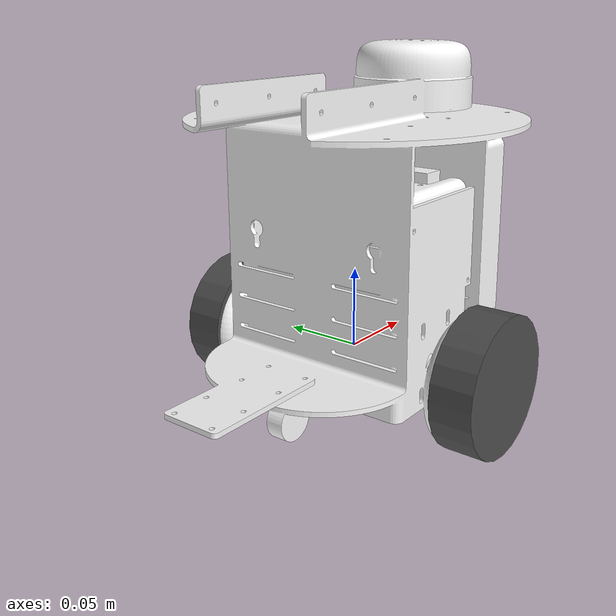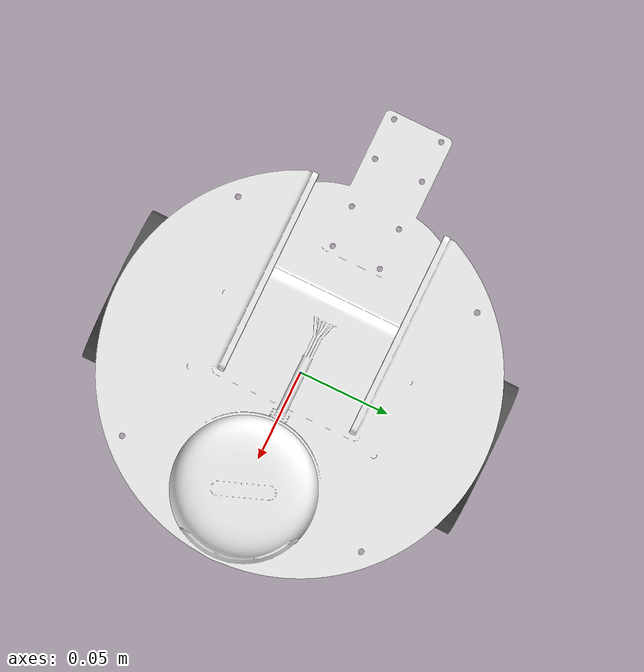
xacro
<?xml version="1.0"?>
<robot name="som_o_robot_20cm" xmlns:xacro="http://www.ros.org/wiki/xacro">

  <!-- Constants -->
  <xacro:include filename="$(find som_o_description)/urdf/20cm/constants.xacro" />

  <!-- Material (Color) -->
  <xacro:include filename="$(find som_o_description)/urdf/20cm/material.xacro" />

  <!-- Body of Robot -->
      <!-- Footprint (require Base Link inclusion) -->
      <xacro:include filename="$(find som_o_description)/urdf/20cm/base_footprint.xacro" />

      <!-- Base Link (Main chassis) -->
      <xacro:include filename="$(find som_o_description)/urdf/20cm/base_link.xacro" />

      <!-- Wheels (Plugin) -->
      <xacro:include filename="$(find som_o_description)/urdf/shared_components/wheel.xacro" />
      <wheel fb="front" lr="right" parent="base_footprint" translateX="0" translateY="1" flipY="1" />
      <wheel fb="front" lr="left" parent="base_footprint" translateX="0" translateY="-1" flipY="1" />

  <!-- Gazebo + ROS Differential Drive plugin -->
  <xacro:include filename="$(find som_o_description)/urdf/20cm/diff_drive_plugin.xacro" />

</robot>

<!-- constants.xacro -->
<robot name="som_o_robot_20cm" xmlns:xacro="http://www.ros.org/wiki/xacro">

    <!-- Constants (m-kg-s-radians unit system) -->
    <xacro:property name="M_PI" value="3.1415926535897931"/>
    <xacro:property name="M_PI_2" value="1.570796327"/>
    <xacro:property name="DEG_TO_RAD" value="0.017453293"/>

    <!-- Meterials properties -->
    <xacro:property name="metal_sheet_thickness" value="0.03"/>

    <!-- Base Link Constants -->
    <!-- Inertial components , Mass (Kgs) -->
    <xacro:property name="base_mass" value="0.2"/>
    <xacro:property name="base_radius" value="0.20"/>
    <xacro:property name="base_height" value="0.22"/>
    <xacro:property name="base_link_visual_mesh_offset_z" value="0.55"/>

    <!-- Chassis Collsion -->
    <xacro:property name="base_col_box_height" value="0.183091"/>
    <xacro:property name="base_col_box_length" value="0.200"/>
    <xacro:property name="base_col_box_width" value="0.140"/>

    <!-- Wheels -->
    <xacro:property name="wheel_radius" value="0.042" />
    <xacro:property name="wheel_height" value="0.026" />
    <xacro:property name="wheel_mass" value="2.5" /> <!-- in kg-->
    <xacro:property name="base_x_origin_to_wheel_origin" value="0" />
    <xacro:property name="base_y_origin_to_wheel_origin" value="0.092" />
    <xacro:property name="base_z_origin_to_wheel_origin" value="0.00" />

    <!-- Macro for calculating inertia of cylinder -->
    <xacro:macro name="cylinder_inertia" params="m r h">
        <inertia ixx="${m*(3*r*r+h*h)/12}" ixy="0" ixz="0"
          iyy="${m*(3*r*r+h*h)/12}" iyz="0" izz="${m*r*r/2}"/>
    </xacro:macro>

</robot>

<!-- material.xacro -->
<robot name="som_o_robot_20cm" xmlns:xacro="http://www.ros.org/wiki/xacro">

<!-- Definitions for colors for using in Gazebo and RViz -->

    <material name="Black">
        <color rgba="0.0 0.0 0.0 1.0" />
    </material>
    <material name="Red">
        <color rgba="0.8 0.0 0.0 1.0" />
    </material>
    <material name="White">
        <color rgba="1.0 1.0 1.0 1.0" />
    </material>
    <material name="Blue">
        <color rgba="0.0 0.0 0.8 1.0" />
    </material>

</robot>

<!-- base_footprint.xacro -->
<robot name="som_o_robot_20cm" xmlns:xacro="http://www.ros.org/wiki/xacro">

    <!-- Base_Footprint (ground mark)  -->
    <link name="base_footprint">

    <inertial>
        <mass value="0.0001" />
        <origin xyz="0 0 0" />
        <inertia ixx="0.0001" ixy="0.0" ixz="0.0" iyy="0.0001" iyz="0.0" izz="0.0001" />
    </inertial>

    <visual>
        <origin xyz="0 0 0" rpy="0 0 0" />
        <geometry>
            <box size="0.001 0.001 0.001" />
        </geometry>
    </visual>
    </link>

    <joint name="base_footprint_joint" type="fixed">
        <origin xyz="0 0 -${wheel_radius}" rpy="0 0 0" />
        <parent link="base_footprint" />
        <child link="base_link" />
    </joint>d

    <gazebo reference="base_footprint">
        <turnGravityOff>false</turnGravityOff>
    </gazebo>

</robot>

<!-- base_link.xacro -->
<robot name="som_o_robot_20cm" xmlns:xacro="http://www.ros.org/wiki/xacro">

  <!-- Base_Link (Action body/chassis of the robot) -->
  <link name="base_link">
  <inertial>
      <mass value="${base_mass}" />
      <origin xyz="0 0 0" />
      <!--The 3x3 rotational inertia matrix. -->
      <cylinder_inertia m="${base_mass}" r="${base_radius}" h="${base_height}" />
  </inertial>

  <!-- Base_Link Visual (mesh from STL) -->
  <visual>
      <origin xyz="0 0 0" rpy="0 0 0" />
      <geometry>
          <mesh filename="package://som_o_description/meshes/obodroid1.stl"/>
      </geometry>
      <material name="White" />
  </visual>

  <!-- Base_Link Collision Model -->
  <collision>
      <origin xyz="0 0 ${base_col_box_height/2}" rpy="0 0 0 " />
      <geometry>
          <box size="${base_col_box_length} ${base_col_box_width} ${base_col_box_height}" />
      </geometry>
  </collision>
  </link>

  <gazebo reference="base_link">
      <material>Gazebo/White</material>
      <turnGravityOff>false</turnGravityOff>
  </gazebo>

</robot>

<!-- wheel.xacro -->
<robot name="wheel" xmlns:xacro="http://www.ros.org/wiki/xacro">

<xacro:macro name="wheel" params="fb lr parent translateX translateY flipY"> <!--fb : front, back ; lr: left, right -->
  <link name="${fb}_${lr}_wheel">
    <visual>
      <origin xyz="0 0 0" rpy="${flipY*M_PI/2} 0  0 " />
      <geometry>
        <cylinder length="${wheel_height}" radius="${wheel_radius}" />
      </geometry>
      <material name="DarkGray" />
    </visual>
    <collision>
      <origin xyz="0 0 0" rpy="${flipY*M_PI/2} 0 0 " />
      <geometry>
        <cylinder length="${wheel_height}" radius="${wheel_radius}" />
      </geometry>
    </collision>
    <inertial>
      <mass value="${wheel_mass}" />
      <origin xyz="0 0 0" />
      <cylinder_inertia  m="${wheel_mass}" r="${wheel_radius}" h="${wheel_height}" />
    </inertial>
  </link>

  <gazebo reference="${fb}_${lr}_wheel">
    <mu1 value="1.0"/>
    <mu2 value="1.0"/>
    <kp  value="10000000.0" />
    <kd  value="1.0" />
    <fdir1 value="1 0 0"/>
    <material>Gazebo/Grey</material>
    <turnGravityOff>false</turnGravityOff>
  </gazebo>

  <joint name="${fb}_${lr}_wheel_joint" type="continuous">
    <parent link="${parent}"/>
    <child link="${fb}_${lr}_wheel"/>
    <origin xyz="${translateX * base_x_origin_to_wheel_origin} ${translateY * base_y_origin_to_wheel_origin} ${base_z_origin_to_wheel_origin}" rpy="0 0 0" />
    <axis xyz="0 1 0" rpy="0  0" />
    <limit effort="100" velocity="100"/>
    <joint_properties damping="0.0" friction="0.0"/>
  </joint>

  <!-- Transmission is important to link the joints and the controller -->
  <transmission name="${fb}_${lr}_wheel_joint_trans">
    <type>transmission_interface/SimpleTransmission</type>
    <joint name="${fb}_${lr}_wheel_joint" />
    <actuator name="${fb}_${lr}_wheel_joint_motor">
      <hardwareInterface>EffortJointInterface</hardwareInterface>
      <mechanicalReduction>1</mechanicalReduction>
    </actuator>
  </transmission>

</xacro:macro>
</robot>
